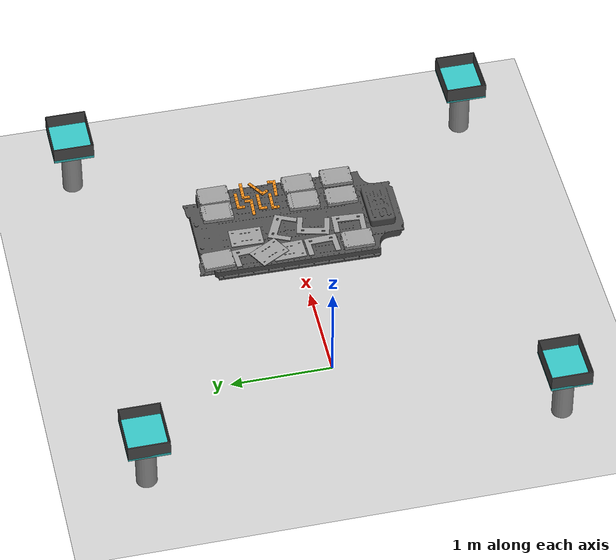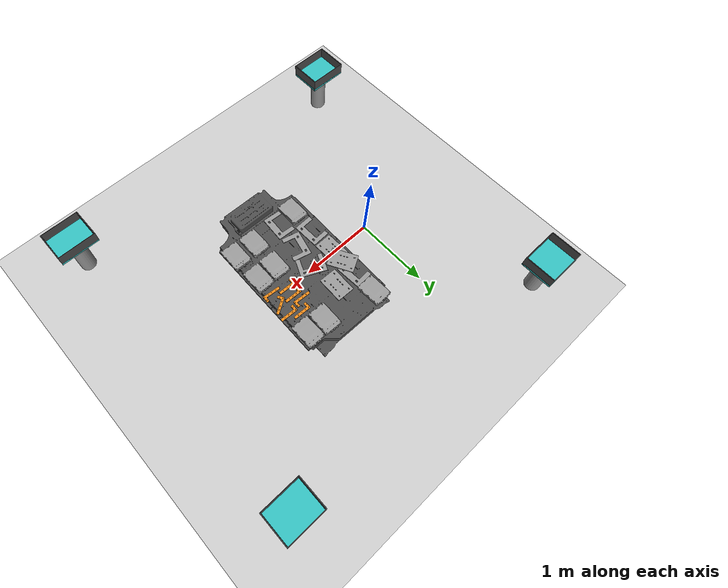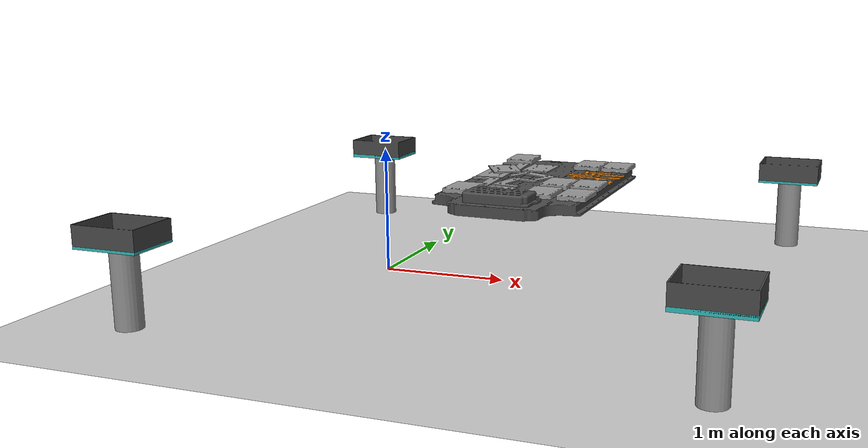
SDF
<sdf version="1.6">
 <world name="default">
  <scene><shadows>0</shadows><ambient>0.4 0.4 0.4 1</ambient><background>0.7 0.7 0.7 1</background></scene>
  <model name="ground_plane">
   <static>1</static>
   <link name="link">
    <collision name="collision">
     <geometry><plane><normal>0 0 1</normal><size>100 100</size></plane></geometry>
     <surface><friction><ode><mu>100</mu><mu2>50</mu2></ode></friction></surface>
    </collision>
    <visual name="visual">
     <cast_shadows>0</cast_shadows>
     <geometry><plane><normal>0 0 1</normal><size>100 100</size></plane></geometry>
     <material>
      <script><uri>file://media/materials/scripts/gazebo.material</uri><name>PR2/Grey3</name></script>
     </material>
    </visual>
   </link>
  </model>
  <light name="sun" type="directional">
   <pose>0 0 10 0 -0 0</pose>
   <diffuse>0.8 0.8 0.8 1</diffuse>
   <specular>0.2 0.2 0.2 1</specular>
   <attenuation>
    <range>1000</range>
    <constant>0.9</constant>
    <linear>0.01</linear>
    <quadratic>0.001</quadratic>
   </attenuation>
   <direction>-0.5 0.1 -0.9</direction>
  </light>
  <model name="tesla_battery">
   <static>1</static>
   <link name="link0">
    <collision name="collision">
     <pose>0 0.15 -0.05445 0 -0 0</pose>
     <geometry><box><size>1 1.9 0.12</size></box></geometry>
     <surface><friction><ode><mu>1</mu><mu2>1</mu2></ode></friction></surface>
    </collision>
    <visual name="visual">
     <geometry><mesh><uri>model://tesla_battery_v2/meshes/tesla_batteryv2.dae</uri></mesh></geometry>
     <material>
      <script><uri>file://media/materials/scripts/gazebo.material</uri><name>Gazebo/DarkGrey</name></script>
     </material>
    </visual>
   </link>
   <pose>1.26145 -0.016967 0.8 0 -0 0</pose>
  </model>
  <model name="tesla_battery_support">
   <static>1</static>
   <link name="link0">
    <collision name="collision"><geometry><box><size>0.7 2.8 0.5</size></box></geometry></collision>
   </link>
   <pose>1.3 0 0.25 0 -0 0</pose>
  </model>
  <model name="bin_1">
   <static>1</static>
   <link name="column_link">
    <collision name="column">
     <pose>0 0 0.3 0 -0 0</pose>
     <geometry><box><size>0.4 0.5 0.6</size></box></geometry>
     <surface><friction><ode><mu>0.6</mu><mu2>0.6</mu2></ode></friction></surface>
    </collision>
    <visual name="column">
     <pose>0 0 0.3 0 -0 0</pose>
     <geometry><cylinder><radius>0.1</radius><length>0.6</length></cylinder></geometry>
     <material>
      <script><uri>file://media/materials/scripts/gazebo.material</uri><name>PR2/Grey4</name></script>
     </material>
    </visual>
   </link>
   <joint name="column2table" type="revolute">
    <parent>column_link</parent>
    <child>table_link</child>
    <pose>0 0 0.3 0 -0 0</pose>
   </joint>
   <link name="table_link">
    <collision name="surface">
     <pose>0 0 0.6 0 -0 0</pose>
     <geometry><box><size>0.5 0.4 0.03</size></box></geometry>
     <surface><friction><ode><mu>0.6</mu><mu2>0.6</mu2></ode></friction></surface>
    </collision>
    <visual name="surface">
     <pose>0 0 0.6 0 -0 0</pose>
     <geometry><box><size>0.5 0.4 0.03</size></box></geometry>
     <material>
      <script><uri>file://media/materials/scripts/gazebo.material</uri><name>Gazebo/Turquoise</name></script>
     </material>
    </visual>
   </link>
   <joint name="table2bin" type="prismatic">
    <parent>table_link</parent>
    <child>bin_link</child>
    <pose>0 0 1 0 -0 0</pose>
    <axis>
     <xyz>0 0 1</xyz>
     <use_parent_model_frame>0</use_parent_model_frame>
     <limit><lower>-1e+16</lower><upper>1e+16</upper></limit>
     <dynamics><spring_reference>0</spring_reference><spring_stiffness>0</spring_stiffness></dynamics>
    </axis>
   </joint>
   <link name="bin_link">
    <collision name="bin">
     <pose>0 0 0.68 0 -0 0</pose>
     <geometry><mesh><uri>model://table_bin/meshes/big_bin.stl</uri></mesh></geometry>
    </collision>
    <visual name="bin">
     <pose>0 0 0.68 0 -0 0</pose>
     <geometry><mesh><uri>model://table_bin/meshes/big_bin.dae</uri></mesh></geometry>
     <material>
      <script><uri>file://media/materials/scripts/gazebo.material</uri><name>Gazebo/DarkGrey</name></script>
     </material>
    </visual>
   </link>
   <pose>-1 2 0 0 -0 0</pose>
  </model>
  <model name="bin_2">
   <static>1</static>
   <link name="column_link">
    <collision name="column">
     <pose>0 0 0.3 0 -0 0</pose>
     <geometry><box><size>0.4 0.5 0.6</size></box></geometry>
     <surface><friction><ode><mu>0.6</mu><mu2>0.6</mu2></ode></friction></surface>
    </collision>
    <visual name="column">
     <pose>0 0 0.3 0 -0 0</pose>
     <geometry><cylinder><radius>0.1</radius><length>0.6</length></cylinder></geometry>
     <material>
      <script><uri>file://media/materials/scripts/gazebo.material</uri><name>PR2/Grey4</name></script>
     </material>
    </visual>
   </link>
   <joint name="column2table" type="revolute">
    <parent>column_link</parent>
    <child>table_link</child>
    <pose>0 0 0.3 0 -0 0</pose>
   </joint>
   <link name="table_link">
    <collision name="surface">
     <pose>0 0 0.6 0 -0 0</pose>
     <geometry><box><size>0.5 0.4 0.03</size></box></geometry>
     <surface><friction><ode><mu>0.6</mu><mu2>0.6</mu2></ode></friction></surface>
    </collision>
    <visual name="surface">
     <pose>0 0 0.6 0 -0 0</pose>
     <geometry><box><size>0.5 0.4 0.03</size></box></geometry>
     <material>
      <script><uri>file://media/materials/scripts/gazebo.material</uri><name>Gazebo/Turquoise</name></script>
     </material>
    </visual>
   </link>
   <joint name="table2bin" type="prismatic">
    <parent>table_link</parent>
    <child>bin_link</child>
    <pose>0 0 1 0 -0 0</pose>
    <axis>
     <xyz>0 0 1</xyz>
     <use_parent_model_frame>0</use_parent_model_frame>
     <limit><lower>-1e+16</lower><upper>1e+16</upper></limit>
     <dynamics><spring_reference>0</spring_reference><spring_stiffness>0</spring_stiffness></dynamics>
    </axis>
   </joint>
   <link name="bin_link">
    <collision name="bin">
     <pose>0 0 0.68 0 -0 0</pose>
     <geometry><mesh><uri>model://table_bin/meshes/big_bin.stl</uri></mesh></geometry>
    </collision>
    <visual name="bin">
     <pose>0 0 0.68 0 -0 0</pose>
     <geometry><mesh><uri>model://table_bin/meshes/big_bin.dae</uri></mesh></geometry>
     <material>
      <script><uri>file://media/materials/scripts/gazebo.material</uri><name>Gazebo/DarkGrey</name></script>
     </material>
    </visual>
   </link>
   <pose>-1 -2 0 0 -0 0</pose>
  </model>
  <model name="bin_3">
   <static>1</static>
   <link name="column_link">
    <collision name="column">
     <pose>0 0 0.3 0 -0 0</pose>
     <geometry><box><size>0.4 0.5 0.6</size></box></geometry>
     <surface><friction><ode><mu>0.6</mu><mu2>0.6</mu2></ode></friction></surface>
    </collision>
    <visual name="column">
     <pose>0 0 0.3 0 -0 0</pose>
     <geometry><cylinder><radius>0.1</radius><length>0.6</length></cylinder></geometry>
     <material>
      <script><uri>file://media/materials/scripts/gazebo.material</uri><name>PR2/Grey4</name></script>
     </material>
    </visual>
   </link>
   <joint name="column2table" type="revolute">
    <parent>column_link</parent>
    <child>table_link</child>
    <pose>0 0 0.3 0 -0 0</pose>
   </joint>
   <link name="table_link">
    <collision name="surface">
     <pose>0 0 0.6 0 -0 0</pose>
     <geometry><box><size>0.5 0.4 0.03</size></box></geometry>
     <surface><friction><ode><mu>0.6</mu><mu2>0.6</mu2></ode></friction></surface>
    </collision>
    <visual name="surface">
     <pose>0 0 0.6 0 -0 0</pose>
     <geometry><box><size>0.5 0.4 0.03</size></box></geometry>
     <material>
      <script><uri>file://media/materials/scripts/gazebo.material</uri><name>Gazebo/Turquoise</name></script>
     </material>
    </visual>
   </link>
   <joint name="table2bin" type="prismatic">
    <parent>table_link</parent>
    <child>bin_link</child>
    <pose>0 0 1 0 -0 0</pose>
    <axis>
     <xyz>0 0 1</xyz>
     <use_parent_model_frame>0</use_parent_model_frame>
     <limit><lower>-1e+16</lower><upper>1e+16</upper></limit>
     <dynamics><spring_reference>0</spring_reference><spring_stiffness>0</spring_stiffness></dynamics>
    </axis>
   </joint>
   <link name="bin_link">
    <collision name="bin">
     <pose>0 0 0.68 0 -0 0</pose>
     <geometry><mesh><uri>model://table_bin/meshes/big_bin.stl</uri></mesh></geometry>
    </collision>
    <visual name="bin">
     <pose>0 0 0.68 0 -0 0</pose>
     <geometry><mesh><uri>model://table_bin/meshes/big_bin.dae</uri></mesh></geometry>
     <material>
      <script><uri>file://media/materials/scripts/gazebo.material</uri><name>Gazebo/DarkGrey</name></script>
     </material>
    </visual>
   </link>
   <pose>3 -2 0 0 -0 0</pose>
  </model>
  <model name="bin_4">
   <static>1</static>
   <link name="column_link">
    <collision name="column">
     <pose>0 0 0.3 0 -0 0</pose>
     <geometry><box><size>0.4 0.5 0.6</size></box></geometry>
     <surface><friction><ode><mu>0.6</mu><mu2>0.6</mu2></ode></friction></surface>
    </collision>
    <visual name="column">
     <pose>0 0 0.3 0 -0 0</pose>
     <geometry><cylinder><radius>0.1</radius><length>0.6</length></cylinder></geometry>
     <material>
      <script><uri>file://media/materials/scripts/gazebo.material</uri><name>PR2/Grey4</name></script>
     </material>
    </visual>
   </link>
   <joint name="column2table" type="revolute">
    <parent>column_link</parent>
    <child>table_link</child>
    <pose>0 0 0.3 0 -0 0</pose>
   </joint>
   <link name="table_link">
    <collision name="surface">
     <pose>0 0 0.6 0 -0 0</pose>
     <geometry><box><size>0.5 0.4 0.03</size></box></geometry>
     <surface><friction><ode><mu>0.6</mu><mu2>0.6</mu2></ode></friction></surface>
    </collision>
    <visual name="surface">
     <pose>0 0 0.6 0 -0 0</pose>
     <geometry><box><size>0.5 0.4 0.03</size></box></geometry>
     <material>
      <script><uri>file://media/materials/scripts/gazebo.material</uri><name>Gazebo/Turquoise</name></script>
     </material>
    </visual>
   </link>
   <joint name="table2bin" type="prismatic">
    <parent>table_link</parent>
    <child>bin_link</child>
    <pose>0 0 1 0 -0 0</pose>
    <axis>
     <xyz>0 0 1</xyz>
     <use_parent_model_frame>0</use_parent_model_frame>
     <limit><lower>-1e+16</lower><upper>1e+16</upper></limit>
     <dynamics><spring_reference>0</spring_reference><spring_stiffness>0</spring_stiffness></dynamics>
    </axis>
   </joint>
   <link name="bin_link">
    <collision name="bin">
     <pose>0 0 0.68 0 -0 0</pose>
     <geometry><mesh><uri>model://table_bin/meshes/big_bin.stl</uri></mesh></geometry>
    </collision>
    <visual name="bin">
     <pose>0 0 0.68 0 -0 0</pose>
     <geometry><mesh><uri>model://table_bin/meshes/big_bin.dae</uri></mesh></geometry>
     <material>
      <script><uri>file://media/materials/scripts/gazebo.material</uri><name>Gazebo/DarkGrey</name></script>
     </material>
    </visual>
   </link>
   <pose>3 2 0 0 -0 0</pose>
  </model>
  <model name="leaf6">
   <static>0</static>
   <link name="leaf_cell_link">
    <collision name="collision">
     <geometry><box><size>0.2228 0.3149 0.035</size></box></geometry>
     <surface><friction><ode><mu>1</mu><mu2>1</mu2></ode></friction></surface>
    </collision>
    <visual name="visual">
     <geometry><mesh><uri>model://leaf_cell/meshes/leaf_cell.dae</uri></mesh></geometry>
     <material>
      <script><uri>file://media/materials/scripts/gazebo.material</uri><name>Gazebo/Grey</name></script>
     </material>
    </visual>
    <inertial>
     <pose>0 0 0 0 0 -1.5707</pose>
     <mass>0.1</mass>
     <inertia>
      <ixx>0.000539835</ixx>
      <iyy>0.00075853</iyy>
      <izz>0.0012813</izz>
      <ixy>0</ixy>
      <ixz>0</ixz>
      <iyz>0</iyz>
     </inertia>
    </inertial>
   </link>
   <pose>1.72538 0.807528 0.823038 -7.8e-05 -0 -0.001177</pose>
  </model>
  <model name="leaf66">
   <static>0</static>
   <link name="leaf_cell_link">
    <collision name="collision">
     <geometry><box><size>0.2228 0.3149 0.035</size></box></geometry>
     <surface><friction><ode><mu>1</mu><mu2>1</mu2></ode></friction></surface>
    </collision>
    <visual name="visual">
     <geometry><mesh><uri>model://leaf_cell/meshes/leaf_cell.dae</uri></mesh></geometry>
     <material>
      <script><uri>file://media/materials/scripts/gazebo.material</uri><name>Gazebo/Grey</name></script>
     </material>
    </visual>
    <inertial>
     <pose>0 0 0 0 0 -1.5707</pose>
     <mass>0.1</mass>
     <inertia>
      <ixx>0.000539835</ixx>
      <iyy>0.00075853</iyy>
      <izz>0.0012813</izz>
      <ixy>0</ixy>
      <ixz>0</ixz>
      <iyz>0</iyz>
     </inertia>
    </inertial>
   </link>
   <pose>1.49222 0.816703 0.823044 0 5.4e-05 -0.028102</pose>
  </model>
  <model name="leaf5">
   <static>0</static>
   <link name="leaf_cell_link">
    <collision name="collision">
     <geometry><box><size>0.2228 0.3149 0.035</size></box></geometry>
     <surface><friction><ode><mu>1</mu><mu2>1</mu2></ode></friction></surface>
    </collision>
    <visual name="visual">
     <geometry><mesh><uri>model://leaf_cell/meshes/leaf_cell.dae</uri></mesh></geometry>
     <material>
      <script><uri>file://media/materials/scripts/gazebo.material</uri><name>Gazebo/Grey</name></script>
     </material>
    </visual>
    <inertial>
     <pose>0 0 0 0 0 -1.5707</pose>
     <mass>0.1</mass>
     <inertia>
      <ixx>0.000539835</ixx>
      <iyy>0.00075853</iyy>
      <izz>0.0012813</izz>
      <ixy>0</ixy>
      <ixz>0</ixz>
      <iyz>0</iyz>
     </inertia>
    </inertial>
   </link>
   <pose>1.71152 -0.029438 0.823038 7.8e-05 -0 0.00452</pose>
  </model>
  <model name="leaf55">
   <static>0</static>
   <link name="leaf_cell_link">
    <collision name="collision">
     <geometry><box><size>0.2228 0.3149 0.035</size></box></geometry>
     <surface><friction><ode><mu>1</mu><mu2>1</mu2></ode></friction></surface>
    </collision>
    <visual name="visual">
     <geometry><mesh><uri>model://leaf_cell/meshes/leaf_cell.dae</uri></mesh></geometry>
     <material>
      <script><uri>file://media/materials/scripts/gazebo.material</uri><name>Gazebo/Grey</name></script>
     </material>
    </visual>
    <inertial>
     <pose>0 0 0 0 0 -1.5707</pose>
     <mass>0.1</mass>
     <inertia>
      <ixx>0.000539835</ixx>
      <iyy>0.00075853</iyy>
      <izz>0.0012813</izz>
      <ixy>0</ixy>
      <ixz>0</ixz>
      <iyz>0</iyz>
     </inertia>
    </inertial>
   </link>
   <pose>1.47668 -0.032976 0.823044 0 5.4e-05 -0.041658</pose>
  </model>
  <model name="leaf4">
   <static>0</static>
   <link name="leaf_cell_link">
    <collision name="collision">
     <geometry><box><size>0.2228 0.3149 0.035</size></box></geometry>
     <surface><friction><ode><mu>1</mu><mu2>1</mu2></ode></friction></surface>
    </collision>
    <visual name="visual">
     <geometry><mesh><uri>model://leaf_cell/meshes/leaf_cell.dae</uri></mesh></geometry>
     <material>
      <script><uri>file://media/materials/scripts/gazebo.material</uri><name>Gazebo/Grey</name></script>
     </material>
    </visual>
    <inertial>
     <pose>0 0 0 0 0 -1.5707</pose>
     <mass>0.1</mass>
     <inertia>
      <ixx>0.000539835</ixx>
      <iyy>0.00075853</iyy>
      <izz>0.0012813</izz>
      <ixy>0</ixy>
      <ixz>0</ixz>
      <iyz>0</iyz>
     </inertia>
    </inertial>
   </link>
   <pose>1.72643 -0.414129 0.823045 -3.2e-05 -0 -0.021192</pose>
  </model>
  <model name="leaf44">
   <static>0</static>
   <link name="leaf_cell_link">
    <collision name="collision">
     <geometry><box><size>0.2228 0.3149 0.035</size></box></geometry>
     <surface><friction><ode><mu>1</mu><mu2>1</mu2></ode></friction></surface>
    </collision>
    <visual name="visual">
     <geometry><mesh><uri>model://leaf_cell/meshes/leaf_cell.dae</uri></mesh></geometry>
     <material>
      <script><uri>file://media/materials/scripts/gazebo.material</uri><name>Gazebo/Grey</name></script>
     </material>
    </visual>
    <inertial>
     <pose>0 0 0 0 0 -1.5707</pose>
     <mass>0.1</mass>
     <inertia>
      <ixx>0.000539835</ixx>
      <iyy>0.00075853</iyy>
      <izz>0.0012813</izz>
      <ixy>0</ixy>
      <ixz>0</ixz>
      <iyz>0</iyz>
     </inertia>
    </inertial>
   </link>
   <pose>1.46423 -0.403984 0.82305 -0 -0 -0.014374</pose>
  </model>
  <model name="leaf1">
   <static>0</static>
   <link name="leaf_cell_link">
    <collision name="collision">
     <geometry><box><size>0.2228 0.3149 0.035</size></box></geometry>
     <surface><friction><ode><mu>1</mu><mu2>1</mu2></ode></friction></surface>
    </collision>
    <visual name="visual">
     <geometry><mesh><uri>model://leaf_cell/meshes/leaf_cell.dae</uri></mesh></geometry>
     <material>
      <script><uri>file://media/materials/scripts/gazebo.material</uri><name>Gazebo/Grey</name></script>
     </material>
    </visual>
    <inertial>
     <pose>0 0 0 0 0 -1.5707</pose>
     <mass>0.1</mass>
     <inertia>
      <ixx>0.000539835</ixx>
      <iyy>0.00075853</iyy>
      <izz>0.0012813</izz>
      <ixy>0</ixy>
      <ixz>0</ixz>
      <iyz>0</iyz>
     </inertia>
    </inertial>
   </link>
   <pose>0.86105 0.935911 0.82305 0 -0 0.030919</pose>
  </model>
  <model name="plate_a_1">
   <static>0</static>
   <link name="link0">
    <collision name="collision">
     <geometry><mesh><uri>model://plate_a/meshes/plate_a_centroid.stl</uri></mesh></geometry>
     <surface><friction><ode><mu>0.99</mu><mu2>0.99</mu2></ode></friction></surface>
    </collision>
    <visual name="visual">
     <geometry><mesh><uri>model://plate_a/meshes/plate_a_centroid.dae</uri></mesh></geometry>
     <material>
      <script><uri>file://media/materials/scripts/gazebo.material</uri><name>PR2/Grey1</name></script>
     </material>
    </visual>
    <inertial>
     <mass>0.1</mass>
     <inertia>
      <ixx>0.00082718</ixx>
      <ixy>0</ixy>
      <ixz>0</ixz>
      <iyy>0.00043403</iyy>
      <iyz>0</iyz>
      <izz>0.00125955</izz>
     </inertia>
    </inertial>
   </link>
   <pose>0.916259 0.620762 0.810548 2.3e-05 -4e-06 0.063613</pose>
  </model>
  <model name="leaf2">
   <static>0</static>
   <link name="leaf_cell_link">
    <collision name="collision">
     <geometry><box><size>0.2228 0.3149 0.035</size></box></geometry>
     <surface><friction><ode><mu>1</mu><mu2>1</mu2></ode></friction></surface>
    </collision>
    <visual name="visual">
     <geometry><mesh><uri>model://leaf_cell/meshes/leaf_cell.dae</uri></mesh></geometry>
     <material>
      <script><uri>file://media/materials/scripts/gazebo.material</uri><name>Gazebo/Grey</name></script>
     </material>
    </visual>
    <inertial>
     <pose>0 0 0 0 0 -1.5707</pose>
     <mass>0.1</mass>
     <inertia>
      <ixx>0.000539835</ixx>
      <iyy>0.00075853</iyy>
      <izz>0.0012813</izz>
      <ixy>0</ixy>
      <ixz>0</ixz>
      <iyz>0</iyz>
     </inertia>
    </inertial>
   </link>
   <pose>0.853059 -0.432019 0.823034 -0.000103 -0 -0.01294</pose>
  </model>
  <model name="plate_a_2">
   <static>0</static>
   <link name="link0">
    <collision name="collision">
     <geometry><mesh><uri>model://plate_a/meshes/plate_a_centroid.stl</uri></mesh></geometry>
     <surface><friction><ode><mu>0.99</mu><mu2>0.99</mu2></ode></friction></surface>
    </collision>
    <visual name="visual">
     <geometry><mesh><uri>model://plate_a/meshes/plate_a_centroid.dae</uri></mesh></geometry>
     <material>
      <script><uri>file://media/materials/scripts/gazebo.material</uri><name>PR2/Grey1</name></script>
     </material>
    </visual>
    <inertial>
     <mass>0.1</mass>
     <inertia>
      <ixx>0.00082718</ixx>
      <ixy>0</ixy>
      <ixz>0</ixz>
      <iyy>0.00043403</iyy>
      <iyz>0</iyz>
      <izz>0.00125955</izz>
     </inertia>
    </inertial>
   </link>
   <pose>0.913316 -0.089092 0.810545 -5.1e-05 -1.5e-05 0.034363</pose>
  </model>
  <gravity>0 0 -9.8</gravity>
  <magnetic_field>6e-06 2.3e-05 -4.2e-05</magnetic_field>
  <atmosphere type="adiabatic"/>
  <physics name="default_physics" default="0" type="ode">
   <max_step_size>0.001</max_step_size>
   <real_time_factor>1</real_time_factor>
   <real_time_update_rate>1000</real_time_update_rate>
  </physics>
  <spherical_coordinates>
   <surface_model>EARTH_WGS84</surface_model>
   <latitude_deg>0</latitude_deg>
   <longitude_deg>0</longitude_deg>
   <elevation>0</elevation>
   <heading_deg>0</heading_deg>
  </spherical_coordinates>
  <model name="plate_a_1_clone">
   <static>0</static>
   <link name="link0">
    <collision name="collision">
     <geometry><mesh><uri>model://plate_a/meshes/plate_a_centroid.stl</uri></mesh></geometry>
     <surface><friction><ode><mu>0.99</mu><mu2>0.99</mu2></ode></friction></surface>
    </collision>
    <visual name="visual">
     <geometry><mesh><uri>model://plate_a/meshes/plate_a_centroid.dae</uri></mesh></geometry>
     <material>
      <script><uri>file://media/materials/scripts/gazebo.material</uri><name>PR2/Grey1</name></script>
     </material>
    </visual>
    <inertial>
     <mass>0.1</mass>
     <inertia>
      <ixx>0.00082718</ixx>
      <ixy>0</ixy>
      <ixz>0</ixz>
      <iyy>0.00043403</iyy>
      <iyz>0</iyz>
      <izz>0.00125955</izz>
     </inertia>
    </inertial>
   </link>
   <pose>1.07776 -0.047232 0.810545 5.3e-05 -6e-06 2.89475</pose>
  </model>
  <model name="plate_a_1_clone_clone">
   <static>0</static>
   <link name="link0">
    <collision name="collision">
     <geometry><mesh><uri>model://plate_a/meshes/plate_a_centroid.stl</uri></mesh></geometry>
     <surface><friction><ode><mu>0.99</mu><mu2>0.99</mu2></ode></friction></surface>
    </collision>
    <visual name="visual">
     <geometry><mesh><uri>model://plate_a/meshes/plate_a_centroid.dae</uri></mesh></geometry>
     <material>
      <script><uri>file://media/materials/scripts/gazebo.material</uri><name>PR2/Grey1</name></script>
     </material>
    </visual>
    <inertial>
     <mass>0.1</mass>
     <inertia>
      <ixx>0.00082718</ixx>
      <ixy>0</ixy>
      <ixz>0</ixz>
      <iyy>0.00043403</iyy>
      <iyz>0</iyz>
      <izz>0.00125955</izz>
     </inertia>
    </inertial>
   </link>
   <pose>1.14476 -0.408468 0.810545 5.3e-05 -6e-06 -0.068647</pose>
  </model>
  <model name="plate_a_2_clone">
   <static>0</static>
   <link name="link0">
    <collision name="collision">
     <geometry><mesh><uri>model://plate_a/meshes/plate_a_centroid.stl</uri></mesh></geometry>
     <surface><friction><ode><mu>0.99</mu><mu2>0.99</mu2></ode></friction></surface>
    </collision>
    <visual name="visual">
     <geometry><mesh><uri>model://plate_a/meshes/plate_a_centroid.dae</uri></mesh></geometry>
     <material>
      <script><uri>file://media/materials/scripts/gazebo.material</uri><name>PR2/Grey1</name></script>
     </material>
    </visual>
    <inertial>
     <mass>0.1</mass>
     <inertia>
      <ixx>0.00082718</ixx>
      <ixy>0</ixy>
      <ixz>0</ixz>
      <iyy>0.00043403</iyy>
      <iyz>0</iyz>
      <izz>0.00125955</izz>
     </inertia>
    </inertial>
   </link>
   <pose>1.18788 0.285025 0.81055 0 -0 1.14514</pose>
  </model>
  <audio><device>default</device></audio>
  <model name="bracket">
   <static>0</static>
   <link name="link0">
    <collision name="collision">
     <pose>-0.005 0 0.005 0 -0 0</pose>
     <geometry><box><size>0.21 0.03 0.01</size></box></geometry>
     <surface><friction><ode><mu>0.99</mu><mu2>0.99</mu2></ode></friction></surface>
    </collision>
    <visual name="visual">
     <geometry><mesh><uri>model://bracket/meshes/bracket_modified.dae</uri></mesh></geometry>
     <material>
      <script><uri>file://media/materials/scripts/gazebo.material</uri><name>Gazebo/Orange</name></script>
     </material>
    </visual>
    <inertial>
     <mass>0.1</mass>
     <inertia><ixx>8e-06</ixx><ixy>0</ixy><ixz>0</ixz><iyy>0.000368</iyy><iyz>0</iyz><izz>0.000375</izz></inertia>
    </inertial>
   </link>
   <pose>1.55621 0.260902 0.80555 0 0 -0.034087</pose>
  </model>
  <model name="bracket_clone">
   <static>0</static>
   <link name="link0">
    <collision name="collision">
     <pose>-0.005 0 0.005 0 -0 0</pose>
     <geometry><box><size>0.21 0.03 0.01</size></box></geometry>
     <surface><friction><ode><mu>0.99</mu><mu2>0.99</mu2></ode></friction></surface>
    </collision>
    <visual name="visual">
     <geometry><mesh><uri>model://bracket/meshes/bracket_modified.dae</uri></mesh></geometry>
     <material>
      <script><uri>file://media/materials/scripts/gazebo.material</uri><name>Gazebo/Orange</name></script>
     </material>
    </visual>
    <inertial>
     <mass>0.1</mass>
     <inertia><ixx>8e-06</ixx><ixy>0</ixy><ixz>0</ixz><iyy>0.000368</iyy><iyz>0</iyz><izz>0.000375</izz></inertia>
    </inertial>
   </link>
   <pose>1.50339 0.457605 0.80555 0 -0 3.08534</pose>
  </model>
  <model name="bracket_clone_clone">
   <static>0</static>
   <link name="link0">
    <collision name="collision">
     <pose>-0.005 0 0.005 0 -0 0</pose>
     <geometry><box><size>0.21 0.03 0.01</size></box></geometry>
     <surface><friction><ode><mu>0.99</mu><mu2>0.99</mu2></ode></friction></surface>
    </collision>
    <visual name="visual">
     <geometry><mesh><uri>model://bracket/meshes/bracket_modified.dae</uri></mesh></geometry>
     <material>
      <script><uri>file://media/materials/scripts/gazebo.material</uri><name>Gazebo/Orange</name></script>
     </material>
    </visual>
    <inertial>
     <mass>0.1</mass>
     <inertia><ixx>8e-06</ixx><ixy>0</ixy><ixz>0</ixz><iyy>0.000368</iyy><iyz>0</iyz><izz>0.000375</izz></inertia>
    </inertial>
   </link>
   <pose>1.62534 0.587739 0.80555 0 0 -0.034087</pose>
  </model>
  <model name="bracket_clone_clone_clone">
   <static>0</static>
   <link name="link0">
    <collision name="collision">
     <pose>-0.005 0 0.005 0 -0 0</pose>
     <geometry><box><size>0.21 0.03 0.01</size></box></geometry>
     <surface><friction><ode><mu>0.99</mu><mu2>0.99</mu2></ode></friction></surface>
    </collision>
    <visual name="visual">
     <geometry><mesh><uri>model://bracket/meshes/bracket_modified.dae</uri></mesh></geometry>
     <material>
      <script><uri>file://media/materials/scripts/gazebo.material</uri><name>Gazebo/Orange</name></script>
     </material>
    </visual>
    <inertial>
     <mass>0.1</mass>
     <inertia><ixx>8e-06</ixx><ixy>0</ixy><ixz>0</ixz><iyy>0.000368</iyy><iyz>0</iyz><izz>0.000375</izz></inertia>
    </inertial>
   </link>
   <pose>1.75021 0.513781 0.805545 0.000333 0 -0.038627</pose>
  </model>
  <model name="bracket_clone_clone_0">
   <static>0</static>
   <link name="link0">
    <collision name="collision">
     <pose>-0.005 0 0.005 0 -0 0</pose>
     <geometry><box><size>0.21 0.03 0.01</size></box></geometry>
     <surface><friction><ode><mu>0.99</mu><mu2>0.99</mu2></ode></friction></surface>
    </collision>
    <visual name="visual">
     <geometry><mesh><uri>model://bracket/meshes/bracket_modified.dae</uri></mesh></geometry>
     <material>
      <script><uri>file://media/materials/scripts/gazebo.material</uri><name>Gazebo/Orange</name></script>
     </material>
    </visual>
    <inertial>
     <mass>0.1</mass>
     <inertia><ixx>8e-06</ixx><ixy>0</ixy><ixz>0</ixz><iyy>0.000368</iyy><iyz>0</iyz><izz>0.000375</izz></inertia>
    </inertial>
   </link>
   <pose>1.71366 0.19158 0.805538 0.000779 -0 3.05836</pose>
  </model>
  <model name="bracket_clone_clone_clone_0">
   <static>0</static>
   <link name="link0">
    <collision name="collision">
     <pose>-0.005 0 0.005 0 -0 0</pose>
     <geometry><box><size>0.21 0.03 0.01</size></box></geometry>
     <surface><friction><ode><mu>0.99</mu><mu2>0.99</mu2></ode></friction></surface>
    </collision>
    <visual name="visual">
     <geometry><mesh><uri>model://bracket/meshes/bracket_modified.dae</uri></mesh></geometry>
     <material>
      <script><uri>file://media/materials/scripts/gazebo.material</uri><name>Gazebo/Orange</name></script>
     </material>
    </visual>
    <inertial>
     <mass>0.1</mass>
     <inertia><ixx>8e-06</ixx><ixy>0</ixy><ixz>0</ixz><iyy>0.000368</iyy><iyz>0</iyz><izz>0.000375</izz></inertia>
    </inertial>
   </link>
   <pose>1.74899 0.373342 0.805545 0.000333 -0 0.555684</pose>
  </model>
  <model name="bracket_clone_clone_1">
   <static>0</static>
   <link name="link0">
    <collision name="collision">
     <pose>-0.005 0 0.005 0 -0 0</pose>
     <geometry><box><size>0.21 0.03 0.01</size></box></geometry>
     <surface><friction><ode><mu>0.99</mu><mu2>0.99</mu2></ode></friction></surface>
    </collision>
    <visual name="visual">
     <geometry><mesh><uri>model://bracket/meshes/bracket_modified.dae</uri></mesh></geometry>
     <material>
      <script><uri>file://media/materials/scripts/gazebo.material</uri><name>Gazebo/Orange</name></script>
     </material>
    </visual>
    <inertial>
     <mass>0.1</mass>
     <inertia><ixx>8e-06</ixx><ixy>0</ixy><ixz>0</ixz><iyy>0.000368</iyy><iyz>0</iyz><izz>0.000375</izz></inertia>
    </inertial>
   </link>
   <pose>1.5713 0.379807 0.80555 0 0 -0.034087</pose>
  </model>
  <model name="plate_b">
   <static>0</static>
   <link name="link0">
    <collision name="collision">
     <geometry><box><size>0.22 0.315 0.01</size></box></geometry>
     <surface><friction><ode><mu>0.99</mu><mu2>0.99</mu2></ode></friction></surface>
    </collision>
    <visual name="visual">
     <geometry><mesh><uri>model://plate_b/meshes/plate_b.dae</uri></mesh></geometry>
     <material>
      <script><uri>file://media/materials/scripts/gazebo.material</uri><name>Gazebo/Grey</name></script>
     </material>
    </visual>
    <inertial>
     <mass>0.1</mass>
     <inertia>
      <ixx>0.0008277</ixx>
      <ixy>0</ixy>
      <ixz>0</ixz>
      <iyy>0.0004042</iyy>
      <iyz>0</iyz>
      <izz>0.0012302</izz>
     </inertia>
    </inertial>
   </link>
   <pose>0.862994 0.42973 0.820549 -1e-05 1.3e-05 0.51109</pose>
  </model>
  <model name="plate_b_clone">
   <static>0</static>
   <link name="link0">
    <collision name="collision">
     <geometry><box><size>0.22 0.315 0.01</size></box></geometry>
     <surface><friction><ode><mu>0.99</mu><mu2>0.99</mu2></ode></friction></surface>
    </collision>
    <visual name="visual">
     <geometry><mesh><uri>model://plate_b/meshes/plate_b.dae</uri></mesh></geometry>
     <material>
      <script><uri>file://media/materials/scripts/gazebo.material</uri><name>Gazebo/Grey</name></script>
     </material>
    </visual>
    <inertial>
     <mass>0.1</mass>
     <inertia>
      <ixx>0.0008277</ixx>
      <ixy>0</ixy>
      <ixz>0</ixz>
      <iyy>0.0004042</iyy>
      <iyz>0</iyz>
      <izz>0.0012302</izz>
     </inertia>
    </inertial>
   </link>
   <pose>1.11896 0.603764 0.81055 -0 -0 -0.026786</pose>
  </model>
  <model name="plate_b_clone_0">
   <static>0</static>
   <link name="link0">
    <collision name="collision">
     <geometry><box><size>0.22 0.315 0.01</size></box></geometry>
     <surface><friction><ode><mu>0.99</mu><mu2>0.99</mu2></ode></friction></surface>
    </collision>
    <visual name="visual">
     <geometry><mesh><uri>model://plate_b/meshes/plate_b.dae</uri></mesh></geometry>
     <material>
      <script><uri>file://media/materials/scripts/gazebo.material</uri><name>Gazebo/Grey</name></script>
     </material>
    </visual>
    <inertial>
     <mass>0.1</mass>
     <inertia>
      <ixx>0.0008277</ixx>
      <ixy>0</ixy>
      <ixz>0</ixz>
      <iyy>0.0004042</iyy>
      <iyz>0</iyz>
      <izz>0.0012302</izz>
     </inertia>
    </inertial>
   </link>
   <pose>0.853431 0.242113 0.81055 0 1e-06 0.022004</pose>
  </model>
 </world>
</sdf>
